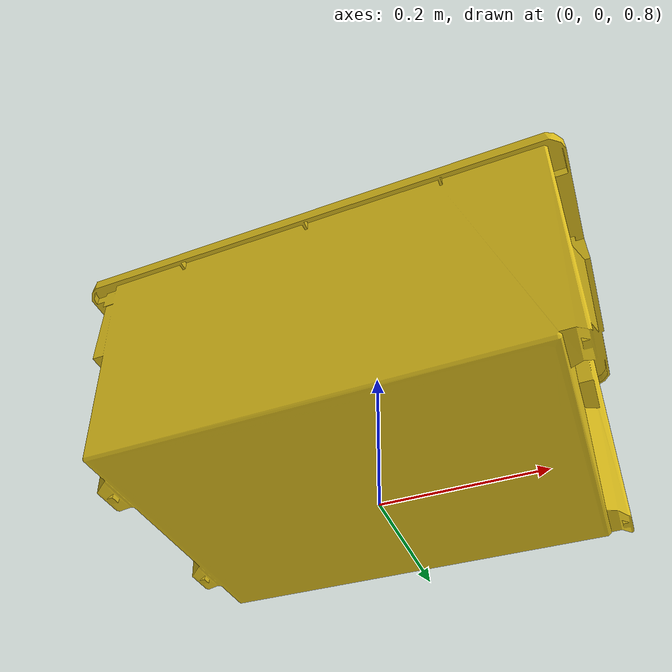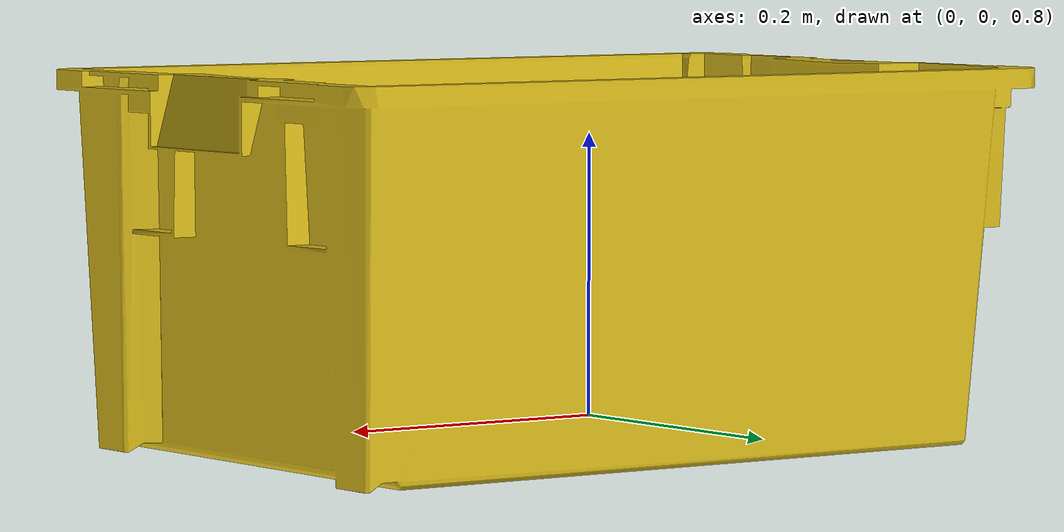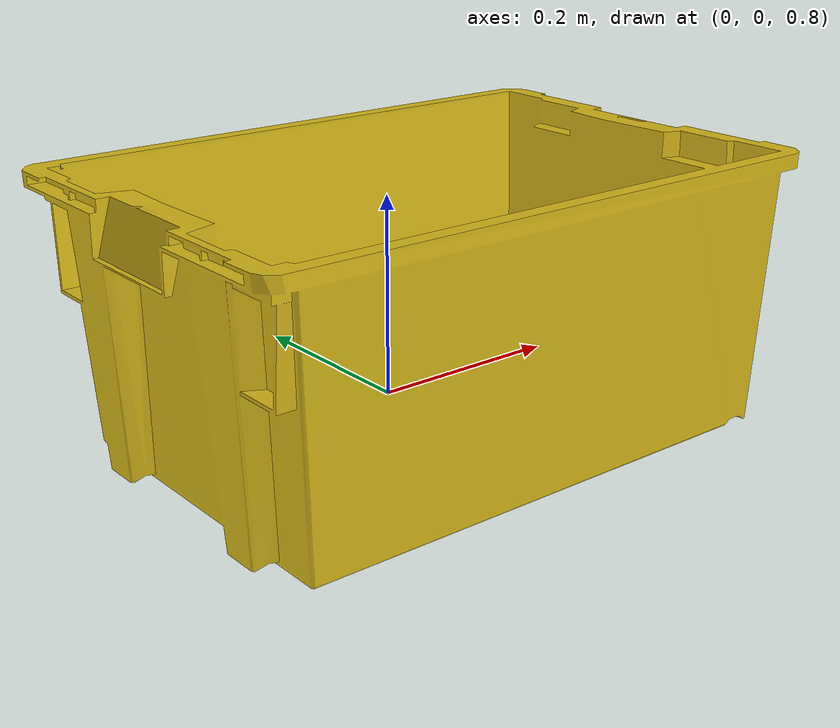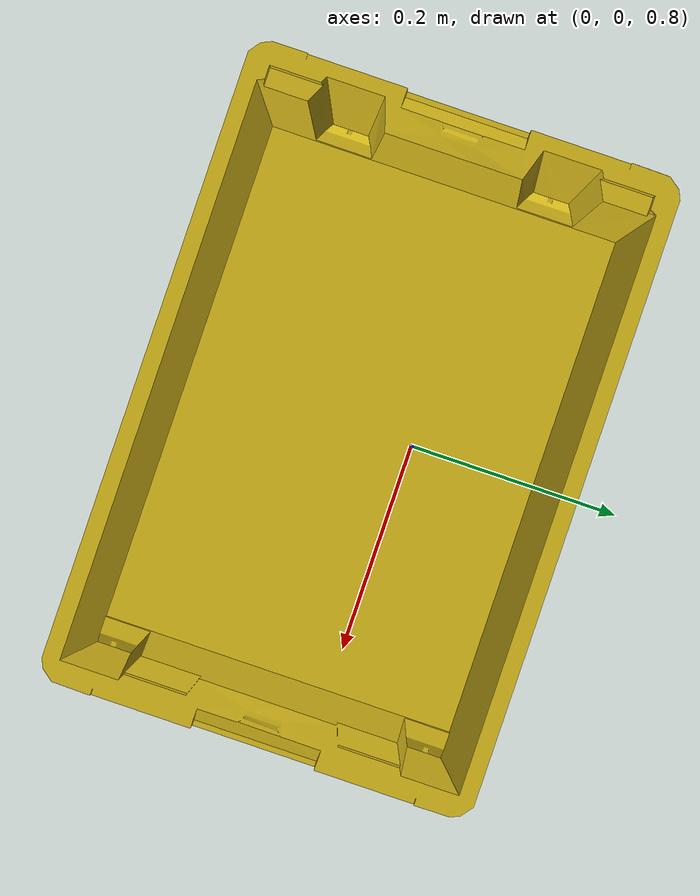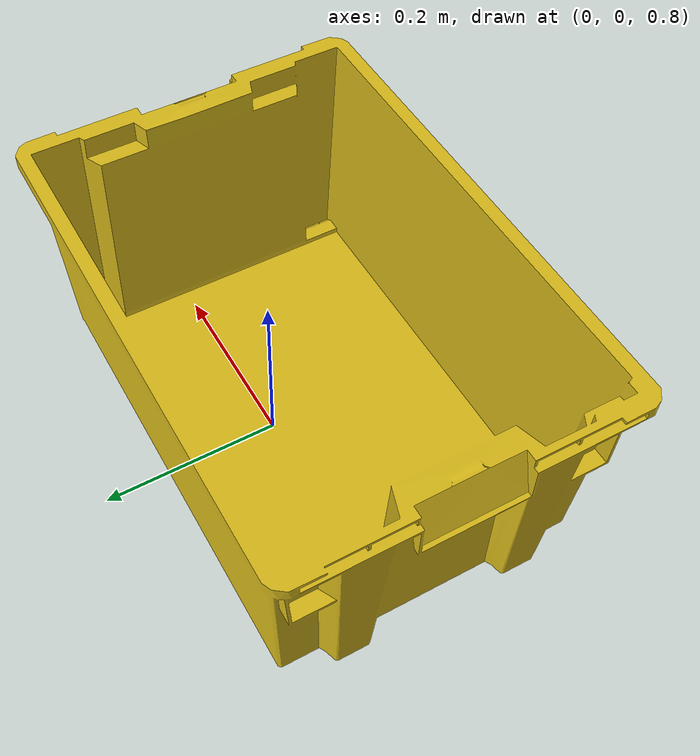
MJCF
<mujoco model="model">
  <default>
    <default class="tote_visual">
      <geom group="2" type="mesh" contype="0" conaffinity="0"/>
    </default>
    <default class="tote_collision">
      <geom group="3" type="mesh"/>
    </default>
  </default>
  <asset>
    <material name="Material_1.001" specular="0.5" shininess="0.5" rgba=".85 .73 .1 1.0"/>
    <mesh name="model" file="model.obj"/>
  </asset>
  <worldbody>
    <body name="model">
      <geom material="Material_1.001" mesh="model" class="tote_visual" pos="0 -0.05 0.909"/>

      <geom type="box" class="tote_collision" size="0.3 0.19 0.005" pos="0.003 -0.05 0.775"/>
      <geom type="box" class="tote_collision" size="0.3 0.02 0.14" pos="0.003 -0.24 0.91"/>
      <geom type="box" class="tote_collision" size="0.3 0.02 0.14" pos="0.003 0.14 0.91"/>
      <geom type="box" class="tote_collision" size="0.031 0.17 0.14" pos="0.272 -0.05 0.91"/>
      <geom type="box" class="tote_collision" size="0.031 0.17 0.14" pos="-0.266 -0.05 0.91"/>

    </body>
  </worldbody>
</mujoco>
